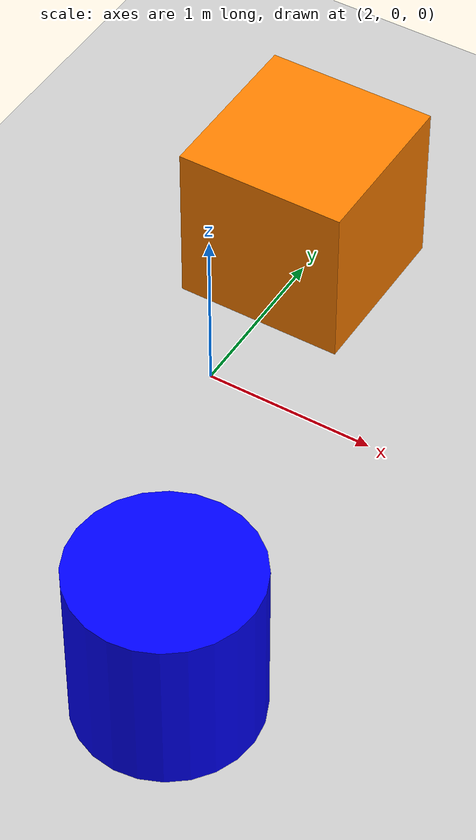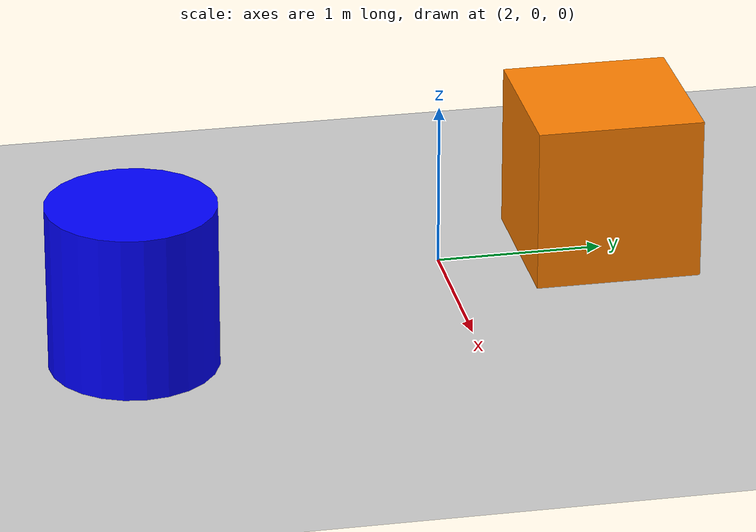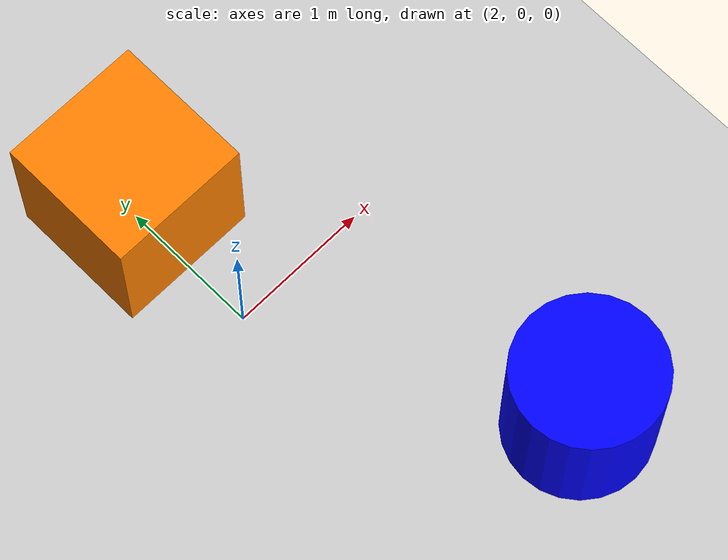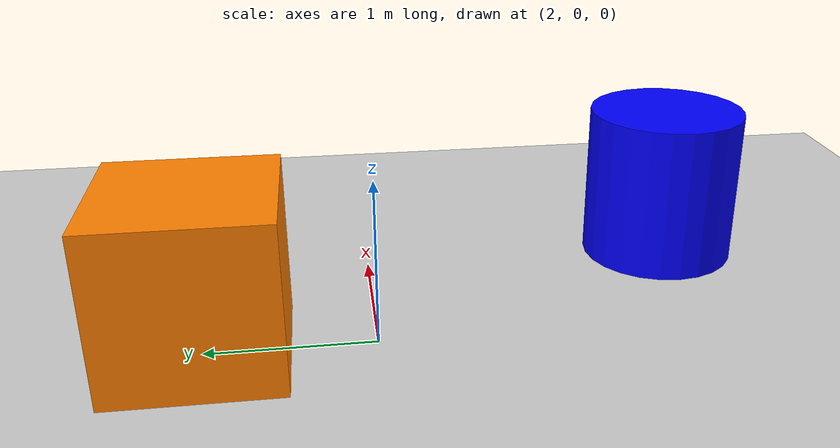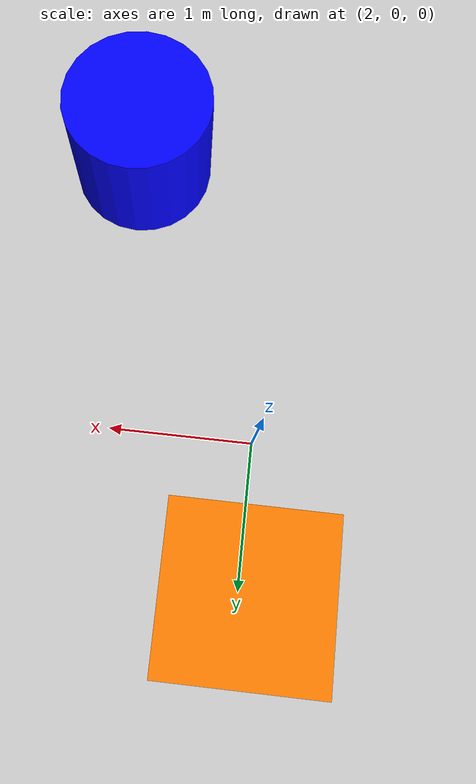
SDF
<?xml version="1.0" ?>
<sdf version="1.8">
  <world name="default">
    <!-- 3 PLUGIN BẮT BUỘC CỦA GAZEBO HARMONIC -->
    <!-- 1. Kích hoạt Vật lý (Trọng lực, va chạm) -->
    <plugin filename="gz-sim-physics-system" name="gz::sim::systems::Physics"></plugin>
    <!-- 2. Cho phép nhận lệnh từ bên ngoài (cần thiết để spawn robot từ ROS 2) -->
    <plugin filename="gz-sim-user-commands-system" name="gz::sim::systems::UserCommands"></plugin>
    <!-- 3. Broadcast trạng thái các vật thể ra giao diện GUI -->
    <plugin filename="gz-sim-scene-broadcaster-system" name="gz::sim::systems::SceneBroadcaster"></plugin>

    <!-- Thêm plugin này để kích hoạt Cảm biến -->
    <plugin filename="gz-sim-sensors-system" name="gz::sim::systems::Sensors">
      <render_engine>ogre2</render_engine>
    </plugin>

    <!-- Ánh sáng mặt trời -->
    <light type="directional" name="sun">
      <cast_shadows>true</cast_shadows>
      <pose>0 0 10 0 0 0</pose>
      <diffuse>0.8 0.8 0.8 1</diffuse>
      <specular>0.2 0.2 0.2 1</specular>
      <direction>-0.5 0.1 -0.9</direction>
    </light>

    <!-- Mặt đất -->
    <model name="ground_plane">
      <static>true</static>
      <link name="link">
        <collision name="collision">
          <geometry><plane><normal>0 0 1</normal></plane></geometry>
        </collision>
        <visual name="visual">
          <geometry><plane><normal>0 0 1</normal><size>100 100</size></plane></geometry>
          <material>
            <ambient>0.8 0.8 0.8 1</ambient>
            <diffuse>0.8 0.8 0.8 1</diffuse>
          </material>
        </visual>
      </link>
    </model>

    <!-- Vật cản 1: Hộp vuông màu Cam -->
    <model name="box_obstacle">
      <pose>2 1 0.5 0 0 0</pose>
      <link name="link">
        <collision name="collision">
          <geometry><box><size>1 1 1</size></box></geometry>
        </collision>
        <visual name="visual">
          <geometry><box><size>1 1 1</size></box></geometry>
          <material>
            <ambient>1 0.5 0 1</ambient>
            <diffuse>1 0.5 0 1</diffuse>
          </material>
        </visual>
      </link>
    </model>

    <!-- Vật cản 2: Hình trụ màu Xanh -->
    <model name="cylinder_obstacle">
      <pose>3 -2 0.5 0 0 0</pose>
      <link name="link">
        <collision name="collision">
          <geometry><cylinder><radius>0.5</radius><length>1.0</length></cylinder></geometry>
        </collision>
        <visual name="visual">
          <geometry><cylinder><radius>0.5</radius><length>1.0</length></cylinder></geometry>
          <material>
            <ambient>0 0 1 1</ambient>
            <diffuse>0 0 1 1</diffuse>
          </material>
        </visual>
      </link>
    </model>
  </world>
</sdf>
